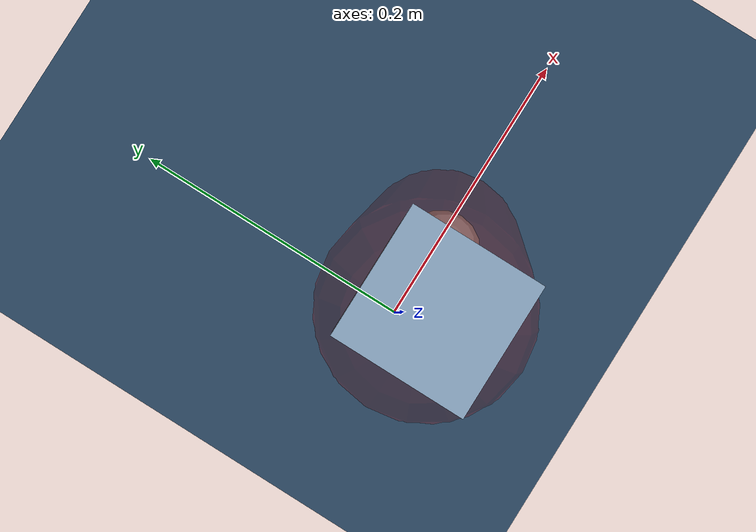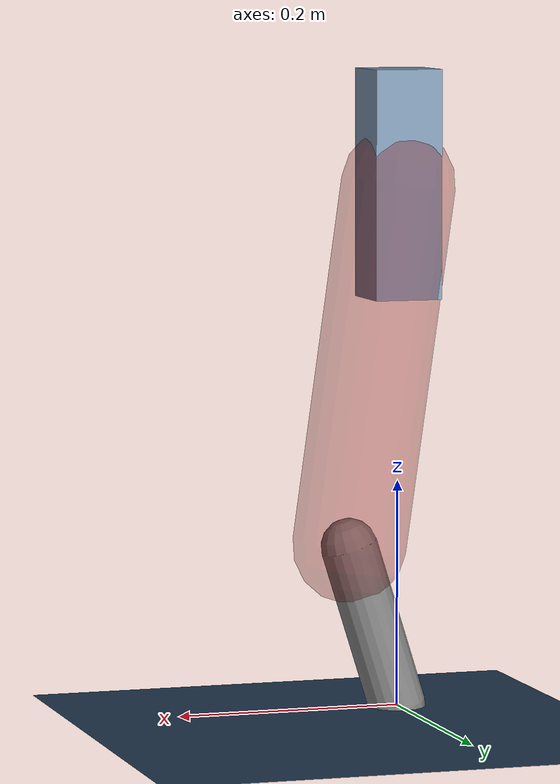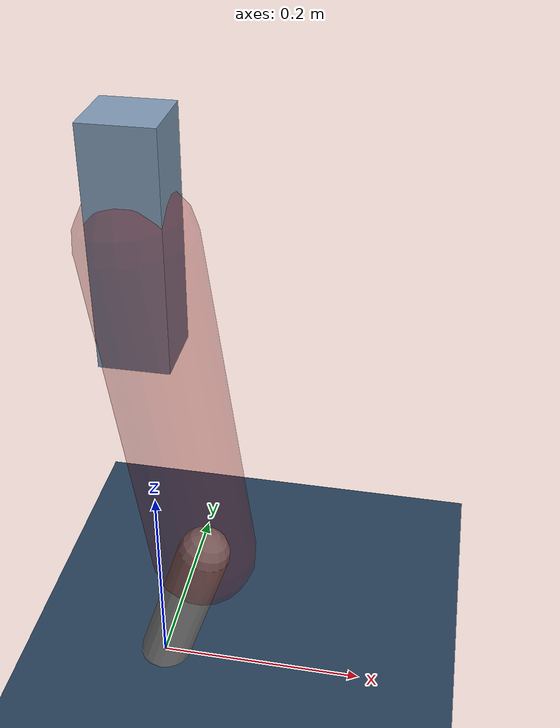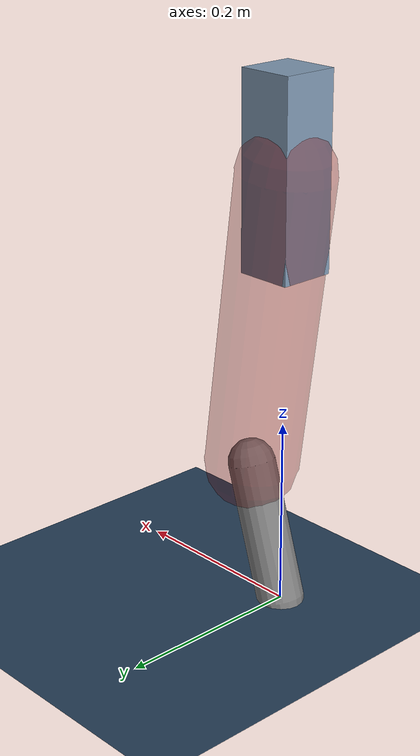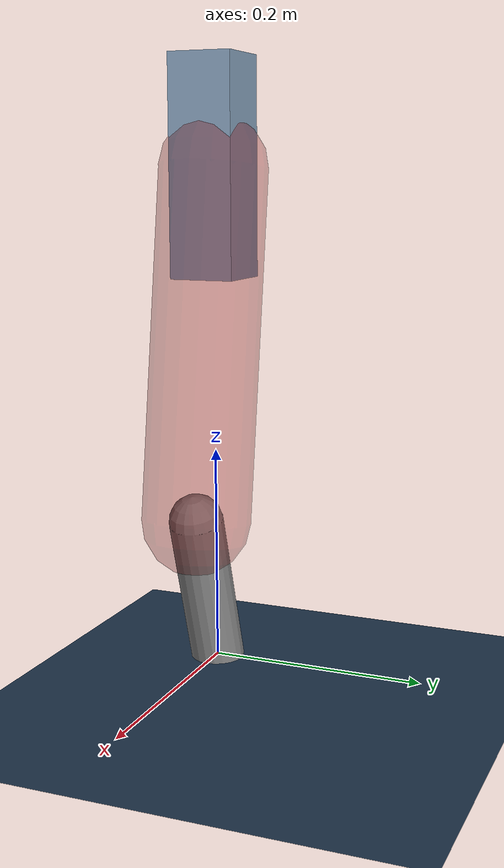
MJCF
<mujoco model="Hopper2D">
	<compiler inertiafromgeom="true" angle="radian" />
	<option timestep="0.001" integrator="implicit" cone="elliptic" solver="Newton" tolerance="1e-10" />

	<default>
		<geom contype="1" conaffinity="1" condim="3" friction="2 0.005 0.0001" solref="0.005 1" />
		<joint limited="true" damping="0.1" />
	</default>

	<asset>
		<texture name="skybox" type="skybox" builtin="gradient" rgb1=".4 .6 .8" rgb2="0 0 0" width="800" height="800" />
		<texture name="grid" type="2d" builtin="checker" rgb1=".1 .2 .3" rgb2=".2 .3 .4" width="300" height="300" mark="edge" markrgb=".2 .3 .4" />
		<material name="ground" texture="grid" texrepeat="1 1" texuniform="true" reflectance="0.1" />
		<material name="leg" rgba="0.5 0.6 0.7 1" />
	</asset>

	<worldbody>

		<geom name="floor" type="plane" size="5 5 0.25" material="ground" />

		<light directional="false" diffuse="0.8 0.8 0.8" specular="0.3 0.3 0.3" pos="0 0 2" dir="0 0 -1" />
		<light mode="targetbodycom" target="base" directional="false" diffuse="0.8 0.8 0.8" specular="0.3 0.3 0.3" pos="0 0 2" dir="0 0 -1" />

		<camera name="fixed" pos="0 -2 1" xyaxes="1 0 0 0 0 1" />
		<camera name="tracking" mode="trackcom" pos="0 -3 1" />

		<body name="root" pos="0 0 0.4613057140352646">
			<joint name="slide_x" type="slide" axis="1 0 0" range="-100 100" />
			<joint name="slide_z" type="slide" axis="0 0 1" range="0 10" />

			<body name="base" pos="0 0 0">
				<geom name="torso" type="box" size="0.03 0.03 0.1" mass="2.311" material="leg" />

				<body name="link1" pos="0 0 0" euler="0 1.4306277169620292 0">
					<joint type="hinge" axis="0 -1 0" pos="0 0 0" name="hinge1" limited="true" range="-3.14 3.14" stiffness="0" damping="0.1" />
					<geom name="thigh" type="capsule" fromto="0 0 0 0.32105261465149626 0 0" size="0.05" rgba="0.5 0 0 0.3" mass="1.0461420595590398" />

					<body name="link2" pos="0.32105261465149626 0 0" euler="0 0.44331526317963743 0">
						<joint type="hinge" axis="0 -1 0" pos="0 0 0" name="hinge2" limited="true" range="-3.14 3.14" stiffness="0" damping="0.1" />
						<geom name="shank" type="capsule" fromto="0 0 0 0.15025309938376835 0 0" size="0.025" mass="0.35792778944539155" />

					</body>
				</body>
			</body>
		</body>
	</worldbody>

	<actuator>
		<motor name="torque1" joint="hinge1" ctrlrange="-45.44396154515637 45.44396154515637" ctrllimited="true" gear="1" />
		<motor name="torque2" joint="hinge2" ctrlrange="-33.21788548440157 33.21788548440157" ctrllimited="true" gear="1" />
	</actuator>
</mujoco>
